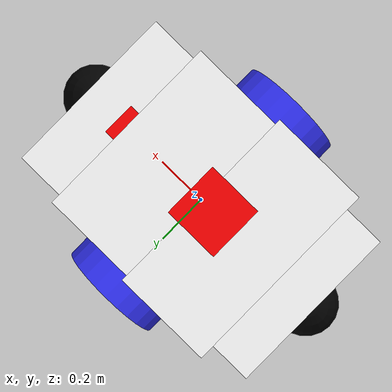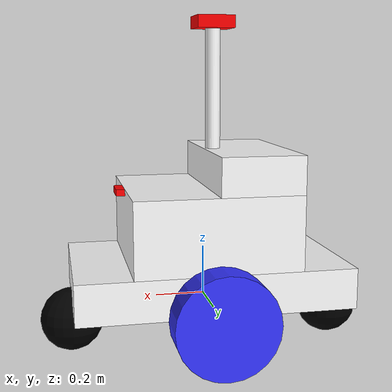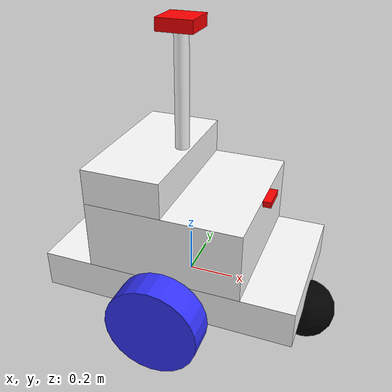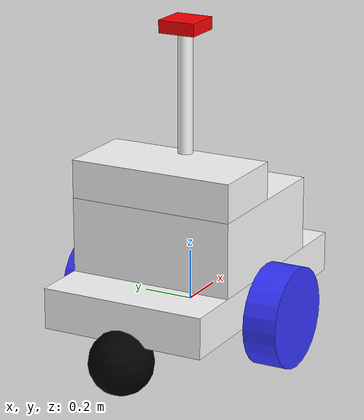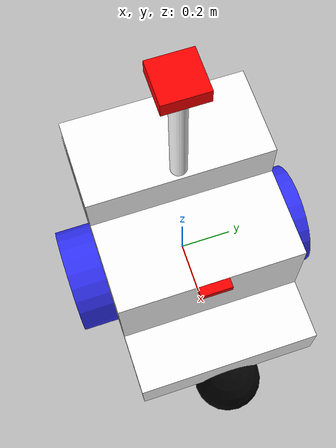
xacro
<?xml version="1.0"?>
<robot xmlns:xacro="http://www.ros.org/wiki/xacro">

    <xacro:include filename="inertial_macros.xacro" />

    <material name="white">
        <color rgba="1 1 1 1" />
    </material>

    <material name="orange">
        <color rgba="1 0.3 0.1 1"/>
    </material>

    <material name="blue">
        <color rgba="0.2 0.2 1 1"/>
    </material>

    <material name="black">
        <color rgba="0 0 0 1"/>
    </material>

    <material name="red">
        <color rgba="1 0 0 1"/>
    </material>

    <!--BASE LINK-->
    <link name="base_link">

    </link>

    <!--CHASSIS LINK-->
    <joint name="chassis_joint" type="fixed">
        <parent link="base_link" />
        <child link="chassis" />
        <origin xyz="-0.5495 0 0" />
    </joint>

    <link name="chassis">
        <visual>
            <origin xyz="0.5495 0 0.08135" />
            <geometry>
                <box size="1.099 0.6689 0.1627" />
            </geometry>
            <material name="white" />
        </visual>
        <collision>
            <origin xyz="0.5495 0 0.08135" />
            <geometry>
                <box size="1.099 0.6689 0.1627" />
            </geometry>
        </collision>
        <xacro:inertial_box mass="29.58" x="1.099" y="0.6689" z="0.1627">
            <origin xyz="0.5495 0 0.08135" rpy="0 0 0" />
        </xacro:inertial_box>
    </link>

    <!--LEFT WHEEL LINK-->
    <joint name="left_wheel_joint" type="continuous">
        <parent link="base_link"/>
        <child link="left_wheel"/>
        <origin xyz="0 0.33445 0" rpy="-${pi/2} 0 0" />
        <axis xyz="0 0 1" />
    </joint>

    <link name="left_wheel">
        <visual>
            <origin xyz="0 0 0.0681" />
            <geometry>
                <cylinder radius="0.202" length=".1362" />
            </geometry>
            <material name="blue" />
        </visual>
        <collision>
            <origin xyz="0 0 0.0681" />
            <geometry>
                <cylinder radius="0.202" length=".1362" />
            </geometry>
        </collision>
        <xacro:inertial_cylinder mass="6.41" length=".1362" radius="0.202">
            <origin xyz="0 0 0.0681" rpy="0 0 0" />
        </xacro:inertial_cylinder>
    </link>

    <!--RIGHT WHEEL LINK-->
    <joint name="right_wheel_joint" type="continuous">
        <parent link="base_link"/>
        <child link="right_wheel"/>
        <origin xyz="0 -0.33445 0" rpy="${pi/2} 0 0" />
        <axis xyz="0 0 -1" />
    </joint>

    <link name="right_wheel">
        <visual>
            <origin xyz="0 0 0.0681" />
            <geometry>
                <cylinder radius="0.202" length=".1362" />
            </geometry>
            <material name="blue" />
        </visual>
        <collision>
            <origin xyz="0 0 0.0681" />
            <geometry>
                <cylinder radius="0.202" length=".1362" />
            </geometry>
        </collision>
        <xacro:inertial_cylinder mass="6.41" length=".1362" radius="0.202">
            <origin xyz="0 0 0.0681" rpy="0 0 0" />
        </xacro:inertial_cylinder>
    </link>

    <!--FRONT CASTER WHEEL LINK-->
    <joint name="front_caster_wheel_joint" type="fixed">
        <parent link="chassis" />
        <child link="front_caster_wheel" />
        <origin xyz="1.099 0 -0.075" />
    </joint>

    <link name="front_caster_wheel">
        <visual>
            <geometry>
                <sphere radius="0.127" />
            </geometry>
            <material name="black" />
        </visual>
        <collision>
            <geometry>
                <sphere radius="0.127" />
            </geometry>
        </collision>
        <xacro:inertial_sphere mass="2.27" radius="0.05">
            <origin xyz="0 0 0" rpy="0 0 0" />
        </xacro:inertial_sphere>
    </link>

    <!--REAR CASTER WHEEL LINK-->
    <joint name="rear_caster_wheel_joint" type="fixed">
        <parent link="chassis" />
        <child link="rear_caster_wheel" />
        <origin xyz="0 0 -0.075" />
    </joint>

    <link name="rear_caster_wheel">
        <visual>
            <geometry>
                <sphere radius="0.127" />
            </geometry>
            <material name="black" />
        </visual>
        <collision>
            <geometry>
                <sphere radius="0.127" />
            </geometry>
        </collision>
        <xacro:inertial_sphere mass="2.27" radius="0.05">
            <origin xyz="0 0 0" rpy="0 0 0" />
        </xacro:inertial_sphere>
    </link>

    <!--BOTTOM FRAME-->
    <joint name="bottom_frame_joint" type="fixed">
        <parent link="chassis" />
        <child link="bottom_frame" />
        <origin xyz="0.2197 0 0.1627" />
    </joint>

    <link name="bottom_frame">
        <visual>
            <origin xyz="0.3298 0 0.14925" />
            <geometry>
                <box size="0.6596 0.6689 0.2985" />
            </geometry>
            <material name="white" />
        </visual>
        <collision>
            <origin xyz="0.3298 0 0.14925" />
            <geometry>
                <box size="0.6596 0.6689 0.2985" />
            </geometry>
        </collision>
        <xacro:inertial_box mass="8.22" x="0.6596" y="0.6689" z="0.2985">
            <origin xyz="0.3298 0 0.14925" rpy="0 0 0" />
        </xacro:inertial_box>
    </link>

    <!--TOP FRAME-->
    <joint name="top_frame_joint" type="fixed">
        <parent link="bottom_frame" />
        <child link="top_frame" />
        <origin xyz="0 0 0.2985" />
    </joint>

    <link name="top_frame">
        <visual>
            <origin xyz="0.1651 0 0.0762" />
            <geometry>
                <box size="0.3302 0.6689 0.1524" />
            </geometry>
            <material name="white" />
        </visual>
        <collision>
            <origin xyz="0.1651 0 0.0762" />
            <geometry>
                <box size="0.3302 0.6689 0.1524" />
            </geometry>
        </collision>
        <xacro:inertial_box mass="8.22" x="0.3302" y="0.6689" z="0.1524">
            <origin xyz="0.1651 0 0.0762" rpy="0 0 0" />
        </xacro:inertial_box>
    </link>

    <!--CAMERA-->
    <joint name="camera_joint" type="fixed">
        <parent link="bottom_frame" />
        <child link="camera_link" />
        <origin xyz="0.6947 0 0.2858" />
    </joint>

    <link name="camera_link">
        <visual>
            <origin xyz="-0.01755 0 0" />
            <geometry>
                <box size="0.0351 0.1143 0.0254" />
            </geometry>
            <material name="red" />
        </visual>
        <collision>
            <origin xyz="-0.01755 0 0" />
            <geometry>
                <box size="0.0351 0.1143 0.0254"  />
            </geometry>
        </collision>
        <xacro:inertial_box mass="0.13" x="0.0351" y="0.1143" z="0.0254">
            <origin xyz="-0.01755 0 0" rpy="0 0 0" />
        </xacro:inertial_box>
    </link>

    <!--GPS HOLDER + LIGHTS-->
    <joint name="gps_holder_joint" type="fixed">
        <parent link="top_frame" />
        <child link="gps_holder_link" />
        <origin xyz="0.29 0 0.1524" />
    </joint>

    <link name="gps_holder_link">
        <visual>
            <origin xyz="0 0 0.2525" />
            <geometry>
                <cylinder radius="0.030" length="0.505" />
            </geometry>
            <material name="white" />
        </visual>
        <collision>
            <origin xyz="0 0 0.2525" />
            <geometry>
                <cylinder radius="0.030" length="0.505" />
            </geometry>
        </collision>
        <xacro:inertial_cylinder mass="0.34" length="0.505" radius="0.030">
            <origin xyz="0 0 0.2525" rpy="0 0 0" />
        </xacro:inertial_cylinder>
    </link>

    <!--GPS-->
    <joint name="gps_joint" type="fixed">
        <parent link="gps_holder_link" />
        <child link="gps_link" />
        <origin xyz="0 0 0.505" />
    </joint>

    <link name="gps_link">
        <visual>
            <origin xyz="-0 0 0" />
            <geometry>
                <box size="0.150 0.150 0.050" />
            </geometry>
            <material name="red" />
        </visual>
        <collision>
            <origin xyz="-0 0 0" />
            <geometry>
                <box size="0.150 0.150 0.050"  />
            </geometry>
        </collision>
        <xacro:inertial_box mass="0.13" x="0.150" y="0.150" z="0.050">
            <origin xyz="0 0 0" rpy="0 0 0" />
        </xacro:inertial_box>
    </link>

    <!--IMU-->
    <joint name="imu_joint" type="fixed">
        <parent link="bottom_frame" />
        <child link="imu_link" />
        <origin xyz="0.658 0 0.2858" />
    </joint>

    <link name="imu_link">
        <visual>
            <origin xyz="0 0 0" />
            <geometry>
                <box size="0.01 0.01 0.007" />
            </geometry>
            <material name="red" />
        </visual>
        <collision>
            <origin xyz="0 0 0" />
            <geometry>
                <box size="0.01 0.01 0.007"  />
            </geometry>
        </collision>
        <xacro:inertial_box mass="0.13" x="0.01" y="0.01" z="0.007">
            <origin xyz="0 0 0" rpy="0 0 0" />
        </xacro:inertial_box>
    </link>

    <!--SIMULATED ODOMETRY-->
    <gazebo>
        <plugin name="diff_drive" filename="libgazebo_ros_diff_drive.so">

            <!--wheels-->
            <left_joint>left_wheel_joint</left_joint>
            <right_joint>right_wheel_joint</right_joint>

            <!--kinematics-->
            <wheel_separation>0.7747</wheel_separation>
            <wheel_diameter>0.381</wheel_diameter>

            <!--limits-->
            <max_wheel_torque>20</max_wheel_torque>
            <max_wheel_acceleration>1.0</max_wheel_acceleration>

            <!--output-->
            <publish_odom>true</publish_odom>
            <publish_odom_tf>true</publish_odom_tf>
            <publish_wheel_tf>true</publish_wheel_tf>

            <odometry_frame>odom</odometry_frame>
            <robot_base_frame>base_link</robot_base_frame>
        </plugin>
    </gazebo>

    <gazebo reference="imu_link">
        <sensor name="imu_sensor" type="imu">
            <plugin filename="libgazebo_ros_imu_sensor.so" name="imu_plugin">
                <ros>
                    <namespace>/</namespace>
                    <remapping>~/out:=imu</remapping>
                </ros>
                <initial_orientation_as_reference>false</initial_orientation_as_reference>
            </plugin>
            <always_on>true</always_on>
            <update_rate>100</update_rate>
            <visualize>true</visualize>
            <imu>
                <angular_velocity>
                    <x>
                        <noise type="gaussian">
                            <mean>0.0</mean>
                            <stddev>2e-4</stddev>
                            <bias_mean>0.0000075</bias_mean>
                            <bias_stddev>0.0000008</bias_stddev>
                        </noise>
                    </x>
                    <y>
                        <noise type="gaussian">
                            <mean>0.0</mean>
                            <stddev>2e-4</stddev>
                            <bias_mean>0.0000075</bias_mean>
                            <bias_stddev>0.0000008</bias_stddev>
                        </noise>
                    </y>
                    <z>
                        <noise type="gaussian">
                            <mean>0.0</mean>
                            <stddev>2e-4</stddev>
                            <bias_mean>0.0000075</bias_mean>
                            <bias_stddev>0.0000008</bias_stddev>
                        </noise>
                    </z>
                </angular_velocity>
                <linear_acceleration>
                    <x>
                        <noise type="gaussian">
                            <mean>0.0</mean>
                            <stddev>1.7e-2</stddev>
                            <bias_mean>0.1</bias_mean>
                            <bias_stddev>0.001</bias_stddev>
                        </noise>
                    </x>
                    <y>
                        <noise type="gaussian">
                            <mean>0.0</mean>
                            <stddev>1.7e-2</stddev>
                            <bias_mean>0.1</bias_mean>
                            <bias_stddev>0.001</bias_stddev>
                        </noise>
                    </y>
                    <z>
                        <noise type="gaussian">
                            <mean>0.0</mean>
                            <stddev>1.7e-2</stddev>
                            <bias_mean>0.1</bias_mean>
                            <bias_stddev>0.001</bias_stddev>
                        </noise>
                    </z>
                </linear_acceleration>
            </imu>
        </sensor>
    </gazebo>

</robot>
